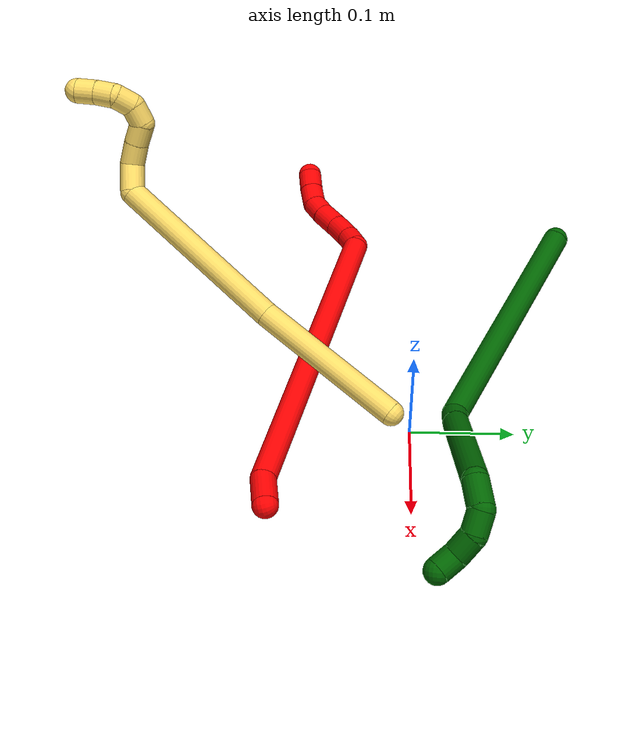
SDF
<sdf version="1.7">
 <world name="default">
  <model name="photoneo_s_sensor">
   <static>1</static>
   <pose>0 0 2 1.57079 1.57079 3.14159</pose>
   <link name="link">
    <inertial><mass>0.1</mass></inertial>
    <sensor name="sensor" type="depth">
     <update_rate>30</update_rate>
     <camera>
      <horizontal_fov>1.22</horizontal_fov>
      <image><width>1920</width><height>1200</height><format>B8G8R8</format></image>
      <clip><near>0.1</near><far>4</far></clip>
      <depth_camera><output>points</output></depth_camera>
     </camera>
     <plugin name="camera_plugin" filename="libgazebo_ros_depth_camera.so">
      <baseline>0.2</baseline>
      <alwaysOn>1</alwaysOn>
      <updateRate>0.0</updateRate>
      <cameraName>camera_ir</cameraName>
      <imageTopicName>/camera/color/image_raw</imageTopicName>
      <cameraInfoTopicName>/camera/color/camera_info</cameraInfoTopicName>
      <depthImageTopicName>/camera/depth/image_raw</depthImageTopicName>
      <depthImageCameraInfoTopicName>/camera/depth/camera_info</depthImageCameraInfoTopicName>
      <pointCloudTopicName>/camera/depth/points</pointCloudTopicName>
      <frameName>fr_optical</frameName>
      <pointCloudCutoff>0.1</pointCloudCutoff>
      <pointCloudCutoffMax>2.0</pointCloudCutoffMax>
      <distortionK1>0</distortionK1>
      <distortionK2>0</distortionK2>
      <distortionK3>0</distortionK3>
      <distortionT1>0</distortionT1>
      <distortionT2>0</distortionT2>
      <CxPrime>0</CxPrime>
      <Cx>0</Cx>
      <Cy>0</Cy>
      <focalLength>0</focalLength>
      <hackBaseline>0</hackBaseline>
     </plugin>
    </sensor>
   </link>
  </model>
  <model name="bin">
   <static>1</static>
   <link name="bottom">
    <collision name="collision-bottom">
     <pose>0 0 -0.01 0 -0 0</pose>
     <geometry><box><size>0.8 0.6 0.02</size></box></geometry>
     <surface>
      <friction><ode><mu>100</mu><mu2>100</mu2></ode></friction>
      <contact><collide_bitmask>65535</collide_bitmask></contact>
     </surface>
    </collision>
   </link>
   <link name="west_wall">
    <collision name="collision-west_wall">
     <pose>-0.41 0 0.1 0 -0 0</pose>
     <geometry><box><size>0.02 0.6 0.2</size></box></geometry>
     <surface>
      <friction><ode><mu>100</mu><mu2>100</mu2></ode></friction>
      <contact><collide_bitmask>65535</collide_bitmask></contact>
     </surface>
    </collision>
   </link>
   <link name="east_wall">
    <collision name="collision-east_wall">
     <pose>0.41 0 0.1 0 -0 0</pose>
     <geometry><box><size>0.02 0.6 0.2</size></box></geometry>
     <surface>
      <friction><ode><mu>100</mu><mu2>100</mu2></ode></friction>
      <contact><collide_bitmask>65535</collide_bitmask></contact>
     </surface>
    </collision>
   </link>
   <link name="south_wall">
    <collision name="collision-south_wall">
     <pose>0 -0.31 0.1 0 -0 0</pose>
     <geometry><box><size>0.8 0.02 0.2</size></box></geometry>
     <surface>
      <friction><ode><mu>100</mu><mu2>100</mu2></ode></friction>
      <contact><collide_bitmask>65535</collide_bitmask></contact>
     </surface>
    </collision>
   </link>
   <link name="north_wall">
    <collision name="collision-north_wall">
     <pose>0 0.31 0.1 0 -0 0</pose>
     <geometry><box><size>0.8 0.02 0.2</size></box></geometry>
     <surface>
      <friction><ode><mu>100</mu><mu2>100</mu2></ode></friction>
      <contact><collide_bitmask>65535</collide_bitmask></contact>
     </surface>
    </collision>
   </link>
  </model>
  <model name="2">
   <static>0</static>
   <link name="2">
    <collision name="collision-cylinder-e_1_1_4">
     <pose>-0.017068 -0.001013 0.002353 0.406525 -1.42183 -0.351312</pose>
     <geometry><cylinder><radius>0.0125</radius><length>0.034519</length></cylinder></geometry>
     <surface>
      <friction><ode><mu>1.16</mu><mu2>1.16</mu2><slip1>0</slip1><slip2>0</slip2></ode></friction>
      <contact><ode><kp>1e+06</kp><kd>1</kd><max_vel>0</max_vel><min_depth>0.001</min_depth></ode></contact>
     </surface>
    </collision>
    <visual name="visual-cylinder-e_1_1_4">
     <pose>-0.017068 -0.001013 0.002353 0.406525 -1.42183 -0.351312</pose>
     <geometry><cylinder><radius>0.0125</radius><length>0.034519</length></cylinder></geometry>
     <material><ambient>1 0 0 1</ambient></material>
    </visual>
    <collision name="collision-cylinder-e_2_4_5">
     <pose>-0.193166 -0.010206 -0.036935 2.94762 -1.31002 -2.88961</pose>
     <geometry><cylinder><radius>0.0125</radius><length>0.329189</length></cylinder></geometry>
     <surface>
      <friction><ode><mu>1.16</mu><mu2>1.16</mu2><slip1>0</slip1><slip2>0</slip2></ode></friction>
      <contact><ode><kp>1e+06</kp><kd>1</kd><max_vel>0</max_vel><min_depth>0.001</min_depth></ode></contact>
     </surface>
    </collision>
    <visual name="visual-cylinder-e_2_4_5">
     <pose>-0.193166 -0.010206 -0.036935 2.94762 -1.31002 -2.88961</pose>
     <geometry><cylinder><radius>0.0125</radius><length>0.329189</length></cylinder></geometry>
     <material><ambient>1 0 0 1</ambient></material>
    </visual>
    <collision name="collision-cylinder-e_3_5_6">
     <pose>-0.362499 -0.019663 -0.074167 0.281811 -1.15162 -0.183654</pose>
     <geometry><cylinder><radius>0.0125</radius><length>0.022558</length></cylinder></geometry>
     <surface>
      <friction><ode><mu>1.16</mu><mu2>1.16</mu2><slip1>0</slip1><slip2>0</slip2></ode></friction>
      <contact><ode><kp>1e+06</kp><kd>1</kd><max_vel>0</max_vel><min_depth>0.001</min_depth></ode></contact>
     </surface>
    </collision>
    <visual name="visual-cylinder-e_3_5_6">
     <pose>-0.362499 -0.019663 -0.074167 0.281811 -1.15162 -0.183654</pose>
     <geometry><cylinder><radius>0.0125</radius><length>0.022558</length></cylinder></geometry>
     <material><ambient>1 0 0 1</ambient></material>
    </visual>
    <collision name="collision-cylinder-e_4_6_7">
     <pose>-0.3848 -0.020674 -0.062804 -0.038235 -1.04525 0.022027</pose>
     <geometry><cylinder><radius>0.0125</radius><length>0.02774</length></cylinder></geometry>
     <surface>
      <friction><ode><mu>1.16</mu><mu2>1.16</mu2><slip1>0</slip1><slip2>0</slip2></ode></friction>
      <contact><ode><kp>1e+06</kp><kd>1</kd><max_vel>0</max_vel><min_depth>0.001</min_depth></ode></contact>
     </surface>
    </collision>
    <visual name="visual-cylinder-e_4_6_7">
     <pose>-0.3848 -0.020674 -0.062804 -0.038235 -1.04525 0.022027</pose>
     <geometry><cylinder><radius>0.0125</radius><length>0.02774</length></cylinder></geometry>
     <material><ambient>1 0 0 1</ambient></material>
    </visual>
    <collision name="collision-cylinder-e_5_7_8">
     <pose>-0.407147 -0.018131 -0.048515 -0.300872 -0.932307 0.152237</pose>
     <geometry><cylinder><radius>0.0125</radius><length>0.025776</length></cylinder></geometry>
     <surface>
      <friction><ode><mu>1.16</mu><mu2>1.16</mu2><slip1>0</slip1><slip2>0</slip2></ode></friction>
      <contact><ode><kp>1e+06</kp><kd>1</kd><max_vel>0</max_vel><min_depth>0.001</min_depth></ode></contact>
     </surface>
    </collision>
    <visual name="visual-cylinder-e_5_7_8">
     <pose>-0.407147 -0.018131 -0.048515 -0.300872 -0.932307 0.152237</pose>
     <geometry><cylinder><radius>0.0125</radius><length>0.025776</length></cylinder></geometry>
     <material><ambient>1 0 0 1</ambient></material>
    </visual>
    <collision name="collision-cylinder-e_6_8_9">
     <pose>-0.426074 -0.01391 -0.03629 -0.378612 -1.02062 0.213684</pose>
     <geometry><cylinder><radius>0.0125</radius><length>0.020126</length></cylinder></geometry>
     <surface>
      <friction><ode><mu>1.16</mu><mu2>1.16</mu2><slip1>0</slip1><slip2>0</slip2></ode></friction>
      <contact><ode><kp>1e+06</kp><kd>1</kd><max_vel>0</max_vel><min_depth>0.001</min_depth></ode></contact>
     </surface>
    </collision>
    <visual name="visual-cylinder-e_6_8_9">
     <pose>-0.426074 -0.01391 -0.03629 -0.378612 -1.02062 0.213684</pose>
     <geometry><cylinder><radius>0.0125</radius><length>0.020126</length></cylinder></geometry>
     <material><ambient>1 0 0 1</ambient></material>
    </visual>
    <collision name="collision-cylinder-e_7_9_10">
     <pose>-0.444028 -0.00851 -0.030571 -1.33496 -1.20845 0.996624</pose>
     <geometry><cylinder><radius>0.0125</radius><length>0.020054</length></cylinder></geometry>
     <surface>
      <friction><ode><mu>1.16</mu><mu2>1.16</mu2><slip1>0</slip1><slip2>0</slip2></ode></friction>
      <contact><ode><kp>1e+06</kp><kd>1</kd><max_vel>0</max_vel><min_depth>0.001</min_depth></ode></contact>
     </surface>
    </collision>
    <visual name="visual-cylinder-e_7_9_10">
     <pose>-0.444028 -0.00851 -0.030571 -1.33496 -1.20845 0.996624</pose>
     <geometry><cylinder><radius>0.0125</radius><length>0.020054</length></cylinder></geometry>
     <material><ambient>1 0 0 1</ambient></material>
    </visual>
    <collision name="collision-cylinder-e_8_10_2">
     <pose>-0.462799 -0.001575 -0.029765 -1.57787 -1.21617 1.22282</pose>
     <geometry><cylinder><radius>0.0125</radius><length>0.020038</length></cylinder></geometry>
     <surface>
      <friction><ode><mu>1.16</mu><mu2>1.16</mu2><slip1>0</slip1><slip2>0</slip2></ode></friction>
      <contact><ode><kp>1e+06</kp><kd>1</kd><max_vel>0</max_vel><min_depth>0.001</min_depth></ode></contact>
     </surface>
    </collision>
    <visual name="visual-cylinder-e_8_10_2">
     <pose>-0.462799 -0.001575 -0.029765 -1.57787 -1.21617 1.22282</pose>
     <geometry><cylinder><radius>0.0125</radius><length>0.020038</length></cylinder></geometry>
     <material><ambient>1 0 0 1</ambient></material>
    </visual>
    <collision name="collision-sphere-2">
     <pose>-0.472195 0.001904 -0.02979 0 -0 0</pose>
     <geometry><sphere><radius>0.0125</radius></sphere></geometry>
     <surface>
      <friction><ode><mu>1.16</mu><mu2>1.16</mu2><slip1>0</slip1><slip2>0</slip2></ode></friction>
      <contact><ode><kp>1e+06</kp><kd>1</kd><max_vel>0</max_vel><min_depth>0.001</min_depth></ode></contact>
     </surface>
    </collision>
    <visual name="visual-sphere-2">
     <pose>-0.472195 0.001904 -0.02979 0 -0 0</pose>
     <geometry><sphere><radius>0.0125</radius></sphere></geometry>
     <material><ambient>1 0 0 1</ambient></material>
    </visual>
    <collision name="collision-sphere-10">
     <pose>-0.453404 -0.005054 -0.02974 0 -0 0</pose>
     <geometry><sphere><radius>0.0125</radius></sphere></geometry>
     <surface>
      <friction><ode><mu>1.16</mu><mu2>1.16</mu2><slip1>0</slip1><slip2>0</slip2></ode></friction>
      <contact><ode><kp>1e+06</kp><kd>1</kd><max_vel>0</max_vel><min_depth>0.001</min_depth></ode></contact>
     </surface>
    </collision>
    <visual name="visual-sphere-10">
     <pose>-0.453404 -0.005054 -0.02974 0 -0 0</pose>
     <geometry><sphere><radius>0.0125</radius></sphere></geometry>
     <material><ambient>1 0 0 1</ambient></material>
    </visual>
    <collision name="collision-sphere-9">
     <pose>-0.434652 -0.011965 -0.031401 0 -0 0</pose>
     <geometry><sphere><radius>0.0125</radius></sphere></geometry>
     <surface>
      <friction><ode><mu>1.16</mu><mu2>1.16</mu2><slip1>0</slip1><slip2>0</slip2></ode></friction>
      <contact><ode><kp>1e+06</kp><kd>1</kd><max_vel>0</max_vel><min_depth>0.001</min_depth></ode></contact>
     </surface>
    </collision>
    <visual name="visual-sphere-9">
     <pose>-0.434652 -0.011965 -0.031401 0 -0 0</pose>
     <geometry><sphere><radius>0.0125</radius></sphere></geometry>
     <material><ambient>1 0 0 1</ambient></material>
    </visual>
    <collision name="collision-sphere-4">
     <pose>-0.034137 -0.002026 0.004706 0 -0 0</pose>
     <geometry><sphere><radius>0.0125</radius></sphere></geometry>
     <surface>
      <friction><ode><mu>1.16</mu><mu2>1.16</mu2><slip1>0</slip1><slip2>0</slip2></ode></friction>
      <contact><ode><kp>1e+06</kp><kd>1</kd><max_vel>0</max_vel><min_depth>0.001</min_depth></ode></contact>
     </surface>
    </collision>
    <visual name="visual-sphere-4">
     <pose>-0.034137 -0.002026 0.004706 0 -0 0</pose>
     <geometry><sphere><radius>0.0125</radius></sphere></geometry>
     <material><ambient>1 0 0 1</ambient></material>
    </visual>
    <collision name="collision-sphere-1">
     <geometry><sphere><radius>0.0125</radius></sphere></geometry>
     <surface>
      <friction><ode><mu>1.16</mu><mu2>1.16</mu2><slip1>0</slip1><slip2>0</slip2></ode></friction>
      <contact><ode><kp>1e+06</kp><kd>1</kd><max_vel>0</max_vel><min_depth>0.001</min_depth></ode></contact>
     </surface>
    </collision>
    <visual name="visual-sphere-1">
     <geometry><sphere><radius>0.0125</radius></sphere></geometry>
     <material><ambient>1 0 0 1</ambient></material>
    </visual>
    <collision name="collision-sphere-8">
     <pose>-0.417496 -0.015855 -0.041179 0 -0 0</pose>
     <geometry><sphere><radius>0.0125</radius></sphere></geometry>
     <surface>
      <friction><ode><mu>1.16</mu><mu2>1.16</mu2><slip1>0</slip1><slip2>0</slip2></ode></friction>
      <contact><ode><kp>1e+06</kp><kd>1</kd><max_vel>0</max_vel><min_depth>0.001</min_depth></ode></contact>
     </surface>
    </collision>
    <visual name="visual-sphere-8">
     <pose>-0.417496 -0.015855 -0.041179 0 -0 0</pose>
     <geometry><sphere><radius>0.0125</radius></sphere></geometry>
     <material><ambient>1 0 0 1</ambient></material>
    </visual>
    <collision name="collision-sphere-5">
     <pose>-0.352196 -0.018386 -0.078576 0 -0 0</pose>
     <geometry><sphere><radius>0.0125</radius></sphere></geometry>
     <surface>
      <friction><ode><mu>1.16</mu><mu2>1.16</mu2><slip1>0</slip1><slip2>0</slip2></ode></friction>
      <contact><ode><kp>1e+06</kp><kd>1</kd><max_vel>0</max_vel><min_depth>0.001</min_depth></ode></contact>
     </surface>
    </collision>
    <visual name="visual-sphere-5">
     <pose>-0.352196 -0.018386 -0.078576 0 -0 0</pose>
     <geometry><sphere><radius>0.0125</radius></sphere></geometry>
     <material><ambient>1 0 0 1</ambient></material>
    </visual>
    <collision name="collision-sphere-6">
     <pose>-0.372801 -0.02094 -0.069757 0 -0 0</pose>
     <geometry><sphere><radius>0.0125</radius></sphere></geometry>
     <surface>
      <friction><ode><mu>1.16</mu><mu2>1.16</mu2><slip1>0</slip1><slip2>0</slip2></ode></friction>
      <contact><ode><kp>1e+06</kp><kd>1</kd><max_vel>0</max_vel><min_depth>0.001</min_depth></ode></contact>
     </surface>
    </collision>
    <visual name="visual-sphere-6">
     <pose>-0.372801 -0.02094 -0.069757 0 -0 0</pose>
     <geometry><sphere><radius>0.0125</radius></sphere></geometry>
     <material><ambient>1 0 0 1</ambient></material>
    </visual>
    <collision name="collision-sphere-7">
     <pose>-0.396798 -0.020408 -0.055851 0 -0 0</pose>
     <geometry><sphere><radius>0.0125</radius></sphere></geometry>
     <surface>
      <friction><ode><mu>1.16</mu><mu2>1.16</mu2><slip1>0</slip1><slip2>0</slip2></ode></friction>
      <contact><ode><kp>1e+06</kp><kd>1</kd><max_vel>0</max_vel><min_depth>0.001</min_depth></ode></contact>
     </surface>
    </collision>
    <visual name="visual-sphere-7">
     <pose>-0.396798 -0.020408 -0.055851 0 -0 0</pose>
     <geometry><sphere><radius>0.0125</radius></sphere></geometry>
     <material><ambient>1 0 0 1</ambient></material>
    </visual>
    <inertial>
     <pose>-0.240554 -0.010722 -0.037366 0 -0 0</pose>
     <mass>0.5</mass>
     <inertia>
      <ixx>-0.000968</ixx>
      <ixy>0</ixy>
      <ixz>0</ixz>
      <iyy>0.002801</iyy>
      <iyz>0</iyz>
      <izz>0.003044</izz>
     </inertia>
    </inertial>
   </link>
   <pose>0.105414 -0.13255 0.01505 1.89915 -0.003524 0.009858</pose>
  </model>
  <model name="5">
   <static>0</static>
   <link name="5">
    <collision name="collision-cylinder-e_1_1_4">
     <pose>0.000259 -0.000672 0.079724 0.008428 0.003251 1.4e-05</pose>
     <geometry><cylinder><radius>0.0125</radius><length>0.159454</length></cylinder></geometry>
     <surface>
      <friction><ode><mu>1.16</mu><mu2>1.16</mu2><slip1>0</slip1><slip2>0</slip2></ode></friction>
      <contact><ode><kp>1e+06</kp><kd>1</kd><max_vel>0</max_vel><min_depth>0.001</min_depth></ode></contact>
     </surface>
    </collision>
    <visual name="visual-cylinder-e_1_1_4">
     <pose>0.000259 -0.000672 0.079724 0.008428 0.003251 1.4e-05</pose>
     <geometry><cylinder><radius>0.0125</radius><length>0.159454</length></cylinder></geometry>
     <material><ambient>1 0.858824 0.4 1</ambient></material>
    </visual>
    <collision name="collision-cylinder-e_2_4_5">
     <pose>-0.010351 -0.005119 0.251461 0.041005 -0.117485 -0.002412</pose>
     <geometry><cylinder><radius>0.0125</radius><length>0.185461</length></cylinder></geometry>
     <surface>
      <friction><ode><mu>1.16</mu><mu2>1.16</mu2><slip1>0</slip1><slip2>0</slip2></ode></friction>
      <contact><ode><kp>1e+06</kp><kd>1</kd><max_vel>0</max_vel><min_depth>0.001</min_depth></ode></contact>
     </surface>
    </collision>
    <visual name="visual-cylinder-e_2_4_5">
     <pose>-0.010351 -0.005119 0.251461 0.041005 -0.117485 -0.002412</pose>
     <geometry><cylinder><radius>0.0125</radius><length>0.185461</length></cylinder></geometry>
     <material><ambient>1 0.858824 0.4 1</ambient></material>
    </visual>
    <collision name="collision-cylinder-e_3_5_6">
     <pose>-0.023985 -0.01968 0.353323 0.830811 -0.187098 -0.082718</pose>
     <geometry><cylinder><radius>0.0125</radius><length>0.029729</length></cylinder></geometry>
     <surface>
      <friction><ode><mu>1.16</mu><mu2>1.16</mu2><slip1>0</slip1><slip2>0</slip2></ode></friction>
      <contact><ode><kp>1e+06</kp><kd>1</kd><max_vel>0</max_vel><min_depth>0.001</min_depth></ode></contact>
     </surface>
    </collision>
    <visual name="visual-cylinder-e_3_5_6">
     <pose>-0.023985 -0.01968 0.353323 0.830811 -0.187098 -0.082718</pose>
     <geometry><cylinder><radius>0.0125</radius><length>0.029729</length></cylinder></geometry>
     <material><ambient>1 0.858824 0.4 1</ambient></material>
    </visual>
    <collision name="collision-cylinder-e_4_6_7">
     <pose>-0.034924 -0.038378 0.366273 1.19722 -0.765858 -0.536285</pose>
     <geometry><cylinder><radius>0.0125</radius><length>0.023583</length></cylinder></geometry>
     <surface>
      <friction><ode><mu>1.16</mu><mu2>1.16</mu2><slip1>0</slip1><slip2>0</slip2></ode></friction>
      <contact><ode><kp>1e+06</kp><kd>1</kd><max_vel>0</max_vel><min_depth>0.001</min_depth></ode></contact>
     </surface>
    </collision>
    <visual name="visual-cylinder-e_4_6_7">
     <pose>-0.034924 -0.038378 0.366273 1.19722 -0.765858 -0.536285</pose>
     <geometry><cylinder><radius>0.0125</radius><length>0.023583</length></cylinder></geometry>
     <material><ambient>1 0.858824 0.4 1</ambient></material>
    </visual>
    <collision name="collision-cylinder-e_5_7_8">
     <pose>-0.050982 -0.053508 0.370974 1.35265 -0.817676 -0.669298</pose>
     <geometry><cylinder><radius>0.0125</radius><length>0.021617</length></cylinder></geometry>
     <surface>
      <friction><ode><mu>1.16</mu><mu2>1.16</mu2><slip1>0</slip1><slip2>0</slip2></ode></friction>
      <contact><ode><kp>1e+06</kp><kd>1</kd><max_vel>0</max_vel><min_depth>0.001</min_depth></ode></contact>
     </surface>
    </collision>
    <visual name="visual-cylinder-e_5_7_8">
     <pose>-0.050982 -0.053508 0.370974 1.35265 -0.817676 -0.669298</pose>
     <geometry><cylinder><radius>0.0125</radius><length>0.021617</length></cylinder></geometry>
     <material><ambient>1 0.858824 0.4 1</ambient></material>
    </visual>
    <collision name="collision-cylinder-e_6_8_9">
     <pose>-0.065513 -0.062668 0.379866 0.260363 -0.721994 -0.098777</pose>
     <geometry><cylinder><radius>0.0125</radius><length>0.020109</length></cylinder></geometry>
     <surface>
      <friction><ode><mu>1.16</mu><mu2>1.16</mu2><slip1>0</slip1><slip2>0</slip2></ode></friction>
      <contact><ode><kp>1e+06</kp><kd>1</kd><max_vel>0</max_vel><min_depth>0.001</min_depth></ode></contact>
     </surface>
    </collision>
    <visual name="visual-cylinder-e_6_8_9">
     <pose>-0.065513 -0.062668 0.379866 0.260363 -0.721994 -0.098777</pose>
     <geometry><cylinder><radius>0.0125</radius><length>0.020109</length></cylinder></geometry>
     <material><ambient>1 0.858824 0.4 1</ambient></material>
    </visual>
    <collision name="collision-cylinder-e_7_9_10">
     <pose>-0.07678 -0.06127 0.395382 -0.385693 -0.48011 0.095523</pose>
     <geometry><cylinder><radius>0.0125</radius><length>0.020018</length></cylinder></geometry>
     <surface>
      <friction><ode><mu>1.16</mu><mu2>1.16</mu2><slip1>0</slip1><slip2>0</slip2></ode></friction>
      <contact><ode><kp>1e+06</kp><kd>1</kd><max_vel>0</max_vel><min_depth>0.001</min_depth></ode></contact>
     </surface>
    </collision>
    <visual name="visual-cylinder-e_7_9_10">
     <pose>-0.07678 -0.06127 0.395382 -0.385693 -0.48011 0.095523</pose>
     <geometry><cylinder><radius>0.0125</radius><length>0.020018</length></cylinder></geometry>
     <material><ambient>1 0.858824 0.4 1</ambient></material>
    </visual>
    <collision name="collision-cylinder-e_8_10_11">
     <pose>-0.079954 -0.054061 0.412716 -0.401764 0.145393 -0.029656</pose>
     <geometry><cylinder><radius>0.0125</radius><length>0.020004</length></cylinder></geometry>
     <surface>
      <friction><ode><mu>1.16</mu><mu2>1.16</mu2><slip1>0</slip1><slip2>0</slip2></ode></friction>
      <contact><ode><kp>1e+06</kp><kd>1</kd><max_vel>0</max_vel><min_depth>0.001</min_depth></ode></contact>
     </surface>
    </collision>
    <visual name="visual-cylinder-e_8_10_11">
     <pose>-0.079954 -0.054061 0.412716 -0.401764 0.145393 -0.029656</pose>
     <geometry><cylinder><radius>0.0125</radius><length>0.020004</length></cylinder></geometry>
     <material><ambient>1 0.858824 0.4 1</ambient></material>
    </visual>
    <collision name="collision-cylinder-e_9_11_2">
     <pose>-0.077535 -0.04509 0.430385 -0.537413 0.097078 -0.026751</pose>
     <geometry><cylinder><radius>0.0125</radius><length>0.020025</length></cylinder></geometry>
     <surface>
      <friction><ode><mu>1.16</mu><mu2>1.16</mu2><slip1>0</slip1><slip2>0</slip2></ode></friction>
      <contact><ode><kp>1e+06</kp><kd>1</kd><max_vel>0</max_vel><min_depth>0.001</min_depth></ode></contact>
     </surface>
    </collision>
    <visual name="visual-cylinder-e_9_11_2">
     <pose>-0.077535 -0.04509 0.430385 -0.537413 0.097078 -0.026751</pose>
     <geometry><cylinder><radius>0.0125</radius><length>0.020025</length></cylinder></geometry>
     <material><ambient>1 0.858824 0.4 1</ambient></material>
    </visual>
    <collision name="collision-sphere-2">
     <pose>-0.076564 -0.039988 0.438946 0 -0 0</pose>
     <geometry><sphere><radius>0.0125</radius></sphere></geometry>
     <surface>
      <friction><ode><mu>1.16</mu><mu2>1.16</mu2><slip1>0</slip1><slip2>0</slip2></ode></friction>
      <contact><ode><kp>1e+06</kp><kd>1</kd><max_vel>0</max_vel><min_depth>0.001</min_depth></ode></contact>
     </surface>
    </collision>
    <visual name="visual-sphere-2">
     <pose>-0.076564 -0.039988 0.438946 0 -0 0</pose>
     <geometry><sphere><radius>0.0125</radius></sphere></geometry>
     <material><ambient>1 0.858824 0.4 1</ambient></material>
    </visual>
    <collision name="collision-sphere-11">
     <pose>-0.078505 -0.050191 0.421824 0 -0 0</pose>
     <geometry><sphere><radius>0.0125</radius></sphere></geometry>
     <surface>
      <friction><ode><mu>1.16</mu><mu2>1.16</mu2><slip1>0</slip1><slip2>0</slip2></ode></friction>
      <contact><ode><kp>1e+06</kp><kd>1</kd><max_vel>0</max_vel><min_depth>0.001</min_depth></ode></contact>
     </surface>
    </collision>
    <visual name="visual-sphere-11">
     <pose>-0.078505 -0.050191 0.421824 0 -0 0</pose>
     <geometry><sphere><radius>0.0125</radius></sphere></geometry>
     <material><ambient>1 0.858824 0.4 1</ambient></material>
    </visual>
    <collision name="collision-sphere-10">
     <pose>-0.081403 -0.057931 0.403607 0 -0 0</pose>
     <geometry><sphere><radius>0.0125</radius></sphere></geometry>
     <surface>
      <friction><ode><mu>1.16</mu><mu2>1.16</mu2><slip1>0</slip1><slip2>0</slip2></ode></friction>
      <contact><ode><kp>1e+06</kp><kd>1</kd><max_vel>0</max_vel><min_depth>0.001</min_depth></ode></contact>
     </surface>
    </collision>
    <visual name="visual-sphere-10">
     <pose>-0.081403 -0.057931 0.403607 0 -0 0</pose>
     <geometry><sphere><radius>0.0125</radius></sphere></geometry>
     <material><ambient>1 0.858824 0.4 1</ambient></material>
    </visual>
    <collision name="collision-sphere-9">
     <pose>-0.072157 -0.06461 0.387157 0 -0 0</pose>
     <geometry><sphere><radius>0.0125</radius></sphere></geometry>
     <surface>
      <friction><ode><mu>1.16</mu><mu2>1.16</mu2><slip1>0</slip1><slip2>0</slip2></ode></friction>
      <contact><ode><kp>1e+06</kp><kd>1</kd><max_vel>0</max_vel><min_depth>0.001</min_depth></ode></contact>
     </surface>
    </collision>
    <visual name="visual-sphere-9">
     <pose>-0.072157 -0.06461 0.387157 0 -0 0</pose>
     <geometry><sphere><radius>0.0125</radius></sphere></geometry>
     <material><ambient>1 0.858824 0.4 1</ambient></material>
    </visual>
    <collision name="collision-sphere-4">
     <pose>0.000518 -0.001344 0.159447 0 -0 0</pose>
     <geometry><sphere><radius>0.0125</radius></sphere></geometry>
     <surface>
      <friction><ode><mu>1.16</mu><mu2>1.16</mu2><slip1>0</slip1><slip2>0</slip2></ode></friction>
      <contact><ode><kp>1e+06</kp><kd>1</kd><max_vel>0</max_vel><min_depth>0.001</min_depth></ode></contact>
     </surface>
    </collision>
    <visual name="visual-sphere-4">
     <pose>0.000518 -0.001344 0.159447 0 -0 0</pose>
     <geometry><sphere><radius>0.0125</radius></sphere></geometry>
     <material><ambient>1 0.858824 0.4 1</ambient></material>
    </visual>
    <collision name="collision-sphere-1">
     <geometry><sphere><radius>0.0125</radius></sphere></geometry>
     <surface>
      <friction><ode><mu>1.16</mu><mu2>1.16</mu2><slip1>0</slip1><slip2>0</slip2></ode></friction>
      <contact><ode><kp>1e+06</kp><kd>1</kd><max_vel>0</max_vel><min_depth>0.001</min_depth></ode></contact>
     </surface>
    </collision>
    <visual name="visual-sphere-1">
     <geometry><sphere><radius>0.0125</radius></sphere></geometry>
     <material><ambient>1 0.858824 0.4 1</ambient></material>
    </visual>
    <collision name="collision-sphere-8">
     <pose>-0.058868 -0.060725 0.372574 0 -0 0</pose>
     <geometry><sphere><radius>0.0125</radius></sphere></geometry>
     <surface>
      <friction><ode><mu>1.16</mu><mu2>1.16</mu2><slip1>0</slip1><slip2>0</slip2></ode></friction>
      <contact><ode><kp>1e+06</kp><kd>1</kd><max_vel>0</max_vel><min_depth>0.001</min_depth></ode></contact>
     </surface>
    </collision>
    <visual name="visual-sphere-8">
     <pose>-0.058868 -0.060725 0.372574 0 -0 0</pose>
     <geometry><sphere><radius>0.0125</radius></sphere></geometry>
     <material><ambient>1 0.858824 0.4 1</ambient></material>
    </visual>
    <collision name="collision-sphere-5">
     <pose>-0.02122 -0.008894 0.343475 0 -0 0</pose>
     <geometry><sphere><radius>0.0125</radius></sphere></geometry>
     <surface>
      <friction><ode><mu>1.16</mu><mu2>1.16</mu2><slip1>0</slip1><slip2>0</slip2></ode></friction>
      <contact><ode><kp>1e+06</kp><kd>1</kd><max_vel>0</max_vel><min_depth>0.001</min_depth></ode></contact>
     </surface>
    </collision>
    <visual name="visual-sphere-5">
     <pose>-0.02122 -0.008894 0.343475 0 -0 0</pose>
     <geometry><sphere><radius>0.0125</radius></sphere></geometry>
     <material><ambient>1 0.858824 0.4 1</ambient></material>
    </visual>
    <collision name="collision-sphere-6">
     <pose>-0.02675 -0.030465 0.363171 0 -0 0</pose>
     <geometry><sphere><radius>0.0125</radius></sphere></geometry>
     <surface>
      <friction><ode><mu>1.16</mu><mu2>1.16</mu2><slip1>0</slip1><slip2>0</slip2></ode></friction>
      <contact><ode><kp>1e+06</kp><kd>1</kd><max_vel>0</max_vel><min_depth>0.001</min_depth></ode></contact>
     </surface>
    </collision>
    <visual name="visual-sphere-6">
     <pose>-0.02675 -0.030465 0.363171 0 -0 0</pose>
     <geometry><sphere><radius>0.0125</radius></sphere></geometry>
     <material><ambient>1 0.858824 0.4 1</ambient></material>
    </visual>
    <collision name="collision-sphere-7">
     <pose>-0.043097 -0.046291 0.369374 0 -0 0</pose>
     <geometry><sphere><radius>0.0125</radius></sphere></geometry>
     <surface>
      <friction><ode><mu>1.16</mu><mu2>1.16</mu2><slip1>0</slip1><slip2>0</slip2></ode></friction>
      <contact><ode><kp>1e+06</kp><kd>1</kd><max_vel>0</max_vel><min_depth>0.001</min_depth></ode></contact>
     </surface>
    </collision>
    <visual name="visual-sphere-7">
     <pose>-0.043097 -0.046291 0.369374 0 -0 0</pose>
     <geometry><sphere><radius>0.0125</radius></sphere></geometry>
     <material><ambient>1 0.858824 0.4 1</ambient></material>
    </visual>
    <inertial>
     <pose>-0.021047 -0.016349 0.237875 0 -0 0</pose>
     <mass>0.5</mass>
     <inertia>
      <ixx>0.000881</ixx>
      <ixy>0</ixy>
      <ixz>0</ixz>
      <iyy>0.000886</iyy>
      <iyz>0</iyz>
      <izz>0.000129</izz>
     </inertia>
    </inertial>
   </link>
   <pose>-0.012355 -0.018278 0.013213 -0.844976 1.15965 -3.07682</pose>
  </model>
  <model name="6">
   <static>0</static>
   <link name="6">
    <collision name="collision-cylinder-e_1_1_4">
     <pose>0.075899 0.047172 0.092525 -0.471478 0.631106 -0.156515</pose>
     <geometry><cylinder><radius>0.0125</radius><length>0.257267</length></cylinder></geometry>
     <surface>
      <friction><ode><mu>1.16</mu><mu2>1.16</mu2><slip1>0</slip1><slip2>0</slip2></ode></friction>
      <contact><ode><kp>1e+06</kp><kd>1</kd><max_vel>0</max_vel><min_depth>0.001</min_depth></ode></contact>
     </surface>
    </collision>
    <visual name="visual-cylinder-e_1_1_4">
     <pose>0.075899 0.047172 0.092525 -0.471478 0.631106 -0.156515</pose>
     <geometry><cylinder><radius>0.0125</radius><length>0.257267</length></cylinder></geometry>
     <material><ambient>0 0.392157 0.003922 1</ambient></material>
    </visual>
    <collision name="collision-cylinder-e_2_4_5">
     <pose>0.16134 0.093768 0.188508 0.164803 1.21875 0.115164</pose>
     <geometry><cylinder><radius>0.0125</radius><length>0.020332</length></cylinder></geometry>
     <surface>
      <friction><ode><mu>1.16</mu><mu2>1.16</mu2><slip1>0</slip1><slip2>0</slip2></ode></friction>
      <contact><ode><kp>1e+06</kp><kd>1</kd><max_vel>0</max_vel><min_depth>0.001</min_depth></ode></contact>
     </surface>
    </collision>
    <visual name="visual-cylinder-e_2_4_5">
     <pose>0.16134 0.093768 0.188508 0.164803 1.21875 0.115164</pose>
     <geometry><cylinder><radius>0.0125</radius><length>0.020332</length></cylinder></geometry>
     <material><ambient>0 0.392157 0.003922 1</ambient></material>
    </visual>
    <collision name="collision-cylinder-e_3_5_6">
     <pose>0.230357 0.085297 0.211439 0.385208 1.23117 0.274132</pose>
     <geometry><cylinder><radius>0.0125</radius><length>0.126155</length></cylinder></geometry>
     <surface>
      <friction><ode><mu>1.16</mu><mu2>1.16</mu2><slip1>0</slip1><slip2>0</slip2></ode></friction>
      <contact><ode><kp>1e+06</kp><kd>1</kd><max_vel>0</max_vel><min_depth>0.001</min_depth></ode></contact>
     </surface>
    </collision>
    <visual name="visual-cylinder-e_3_5_6">
     <pose>0.230357 0.085297 0.211439 0.385208 1.23117 0.274132</pose>
     <geometry><cylinder><radius>0.0125</radius><length>0.126155</length></cylinder></geometry>
     <material><ambient>0 0.392157 0.003922 1</ambient></material>
    </visual>
    <collision name="collision-cylinder-e_4_6_7">
     <pose>0.298444 0.074072 0.242442 0.28111 0.6225 0.090972</pose>
     <geometry><cylinder><radius>0.0125</radius><length>0.029542</length></cylinder></geometry>
     <surface>
      <friction><ode><mu>1.16</mu><mu2>1.16</mu2><slip1>0</slip1><slip2>0</slip2></ode></friction>
      <contact><ode><kp>1e+06</kp><kd>1</kd><max_vel>0</max_vel><min_depth>0.001</min_depth></ode></contact>
     </surface>
    </collision>
    <visual name="visual-cylinder-e_4_6_7">
     <pose>0.298444 0.074072 0.242442 0.28111 0.6225 0.090972</pose>
     <geometry><cylinder><radius>0.0125</radius><length>0.029542</length></cylinder></geometry>
     <material><ambient>0 0.392157 0.003922 1</ambient></material>
    </visual>
    <collision name="collision-cylinder-e_5_7_8">
     <pose>0.307623 0.073008 0.264582 -0.210304 0.05218 -0.005508</pose>
     <geometry><cylinder><radius>0.0125</radius><length>0.02173</length></cylinder></geometry>
     <surface>
      <friction><ode><mu>1.16</mu><mu2>1.16</mu2><slip1>0</slip1><slip2>0</slip2></ode></friction>
      <contact><ode><kp>1e+06</kp><kd>1</kd><max_vel>0</max_vel><min_depth>0.001</min_depth></ode></contact>
     </surface>
    </collision>
    <visual name="visual-cylinder-e_5_7_8">
     <pose>0.307623 0.073008 0.264582 -0.210304 0.05218 -0.005508</pose>
     <geometry><cylinder><radius>0.0125</radius><length>0.02173</length></cylinder></geometry>
     <material><ambient>0 0.392157 0.003922 1</ambient></material>
    </visual>
    <collision name="collision-cylinder-e_6_8_9">
     <pose>0.305142 0.081831 0.28487 -0.595639 -0.254979 0.078652</pose>
     <geometry><cylinder><radius>0.0125</radius><length>0.02416</length></cylinder></geometry>
     <surface>
      <friction><ode><mu>1.16</mu><mu2>1.16</mu2><slip1>0</slip1><slip2>0</slip2></ode></friction>
      <contact><ode><kp>1e+06</kp><kd>1</kd><max_vel>0</max_vel><min_depth>0.001</min_depth></ode></contact>
     </surface>
    </collision>
    <visual name="visual-cylinder-e_6_8_9">
     <pose>0.305142 0.081831 0.28487 -0.595639 -0.254979 0.078652</pose>
     <geometry><cylinder><radius>0.0125</radius><length>0.02416</length></cylinder></geometry>
     <material><ambient>0 0.392157 0.003922 1</ambient></material>
    </visual>
    <collision name="collision-cylinder-e_7_9_2">
     <pose>0.305029 0.095658 0.301392 -0.815352 0.285783 -0.124109</pose>
     <geometry><cylinder><radius>0.0125</radius><length>0.020814</length></cylinder></geometry>
     <surface>
      <friction><ode><mu>1.16</mu><mu2>1.16</mu2><slip1>0</slip1><slip2>0</slip2></ode></friction>
      <contact><ode><kp>1e+06</kp><kd>1</kd><max_vel>0</max_vel><min_depth>0.001</min_depth></ode></contact>
     </surface>
    </collision>
    <visual name="visual-cylinder-e_7_9_2">
     <pose>0.305029 0.095658 0.301392 -0.815352 0.285783 -0.124109</pose>
     <geometry><cylinder><radius>0.0125</radius><length>0.020814</length></cylinder></geometry>
     <material><ambient>0 0.392157 0.003922 1</ambient></material>
    </visual>
    <collision name="collision-sphere-2">
     <pose>0.307963 0.102927 0.308238 0 -0 0</pose>
     <geometry><sphere><radius>0.0125</radius></sphere></geometry>
     <surface>
      <friction><ode><mu>1.16</mu><mu2>1.16</mu2><slip1>0</slip1><slip2>0</slip2></ode></friction>
      <contact><ode><kp>1e+06</kp><kd>1</kd><max_vel>0</max_vel><min_depth>0.001</min_depth></ode></contact>
     </surface>
    </collision>
    <visual name="visual-sphere-2">
     <pose>0.307963 0.102927 0.308238 0 -0 0</pose>
     <geometry><sphere><radius>0.0125</radius></sphere></geometry>
     <material><ambient>0 0.392157 0.003922 1</ambient></material>
    </visual>
    <collision name="collision-sphere-9">
     <pose>0.302096 0.08839 0.294546 0 -0 0</pose>
     <geometry><sphere><radius>0.0125</radius></sphere></geometry>
     <surface>
      <friction><ode><mu>1.16</mu><mu2>1.16</mu2><slip1>0</slip1><slip2>0</slip2></ode></friction>
      <contact><ode><kp>1e+06</kp><kd>1</kd><max_vel>0</max_vel><min_depth>0.001</min_depth></ode></contact>
     </surface>
    </collision>
    <visual name="visual-sphere-9">
     <pose>0.302096 0.08839 0.294546 0 -0 0</pose>
     <geometry><sphere><radius>0.0125</radius></sphere></geometry>
     <material><ambient>0 0.392157 0.003922 1</ambient></material>
    </visual>
    <collision name="collision-sphere-4">
     <pose>0.151798 0.094343 0.18505 0 -0 0</pose>
     <geometry><sphere><radius>0.0125</radius></sphere></geometry>
     <surface>
      <friction><ode><mu>1.16</mu><mu2>1.16</mu2><slip1>0</slip1><slip2>0</slip2></ode></friction>
      <contact><ode><kp>1e+06</kp><kd>1</kd><max_vel>0</max_vel><min_depth>0.001</min_depth></ode></contact>
     </surface>
    </collision>
    <visual name="visual-sphere-4">
     <pose>0.151798 0.094343 0.18505 0 -0 0</pose>
     <geometry><sphere><radius>0.0125</radius></sphere></geometry>
     <material><ambient>0 0.392157 0.003922 1</ambient></material>
    </visual>
    <collision name="collision-sphere-1">
     <geometry><sphere><radius>0.0125</radius></sphere></geometry>
     <surface>
      <friction><ode><mu>1.16</mu><mu2>1.16</mu2><slip1>0</slip1><slip2>0</slip2></ode></friction>
      <contact><ode><kp>1e+06</kp><kd>1</kd><max_vel>0</max_vel><min_depth>0.001</min_depth></ode></contact>
     </surface>
    </collision>
    <visual name="visual-sphere-1">
     <geometry><sphere><radius>0.0125</radius></sphere></geometry>
     <material><ambient>0 0.392157 0.003922 1</ambient></material>
    </visual>
    <collision name="collision-sphere-8">
     <pose>0.308189 0.075273 0.275193 0 -0 0</pose>
     <geometry><sphere><radius>0.0125</radius></sphere></geometry>
     <surface>
      <friction><ode><mu>1.16</mu><mu2>1.16</mu2><slip1>0</slip1><slip2>0</slip2></ode></friction>
      <contact><ode><kp>1e+06</kp><kd>1</kd><max_vel>0</max_vel><min_depth>0.001</min_depth></ode></contact>
     </surface>
    </collision>
    <visual name="visual-sphere-8">
     <pose>0.308189 0.075273 0.275193 0 -0 0</pose>
     <geometry><sphere><radius>0.0125</radius></sphere></geometry>
     <material><ambient>0 0.392157 0.003922 1</ambient></material>
    </visual>
    <collision name="collision-sphere-5">
     <pose>0.170883 0.093193 0.191965 0 -0 0</pose>
     <geometry><sphere><radius>0.0125</radius></sphere></geometry>
     <surface>
      <friction><ode><mu>1.16</mu><mu2>1.16</mu2><slip1>0</slip1><slip2>0</slip2></ode></friction>
      <contact><ode><kp>1e+06</kp><kd>1</kd><max_vel>0</max_vel><min_depth>0.001</min_depth></ode></contact>
     </surface>
    </collision>
    <visual name="visual-sphere-5">
     <pose>0.170883 0.093193 0.191965 0 -0 0</pose>
     <geometry><sphere><radius>0.0125</radius></sphere></geometry>
     <material><ambient>0 0.392157 0.003922 1</ambient></material>
    </visual>
    <collision name="collision-sphere-6">
     <pose>0.289831 0.077401 0.230913 0 -0 0</pose>
     <geometry><sphere><radius>0.0125</radius></sphere></geometry>
     <surface>
      <friction><ode><mu>1.16</mu><mu2>1.16</mu2><slip1>0</slip1><slip2>0</slip2></ode></friction>
      <contact><ode><kp>1e+06</kp><kd>1</kd><max_vel>0</max_vel><min_depth>0.001</min_depth></ode></contact>
     </surface>
    </collision>
    <visual name="visual-sphere-6">
     <pose>0.289831 0.077401 0.230913 0 -0 0</pose>
     <geometry><sphere><radius>0.0125</radius></sphere></geometry>
     <material><ambient>0 0.392157 0.003922 1</ambient></material>
    </visual>
    <collision name="collision-sphere-7">
     <pose>0.307056 0.070743 0.253971 0 -0 0</pose>
     <geometry><sphere><radius>0.0125</radius></sphere></geometry>
     <surface>
      <friction><ode><mu>1.16</mu><mu2>1.16</mu2><slip1>0</slip1><slip2>0</slip2></ode></friction>
      <contact><ode><kp>1e+06</kp><kd>1</kd><max_vel>0</max_vel><min_depth>0.001</min_depth></ode></contact>
     </surface>
    </collision>
    <visual name="visual-sphere-7">
     <pose>0.307056 0.070743 0.253971 0 -0 0</pose>
     <geometry><sphere><radius>0.0125</radius></sphere></geometry>
     <material><ambient>0 0.392157 0.003922 1</ambient></material>
    </visual>
    <inertial>
     <pose>0.162179 0.065091 0.160755 0 -0 0</pose>
     <mass>0.5</mass>
     <inertia>
      <ixx>0.001063</ixx>
      <ixy>0</ixy>
      <ixz>0</ixz>
      <iyy>0.001341</iyy>
      <iyz>0</iyz>
      <izz>-0.001489</izz>
     </inertia>
    </inertial>
   </link>
   <pose>-0.228297 0.154183 0.053353 3.10493 -0.770346 -0.050289</pose>
  </model>
 </world>
</sdf>
